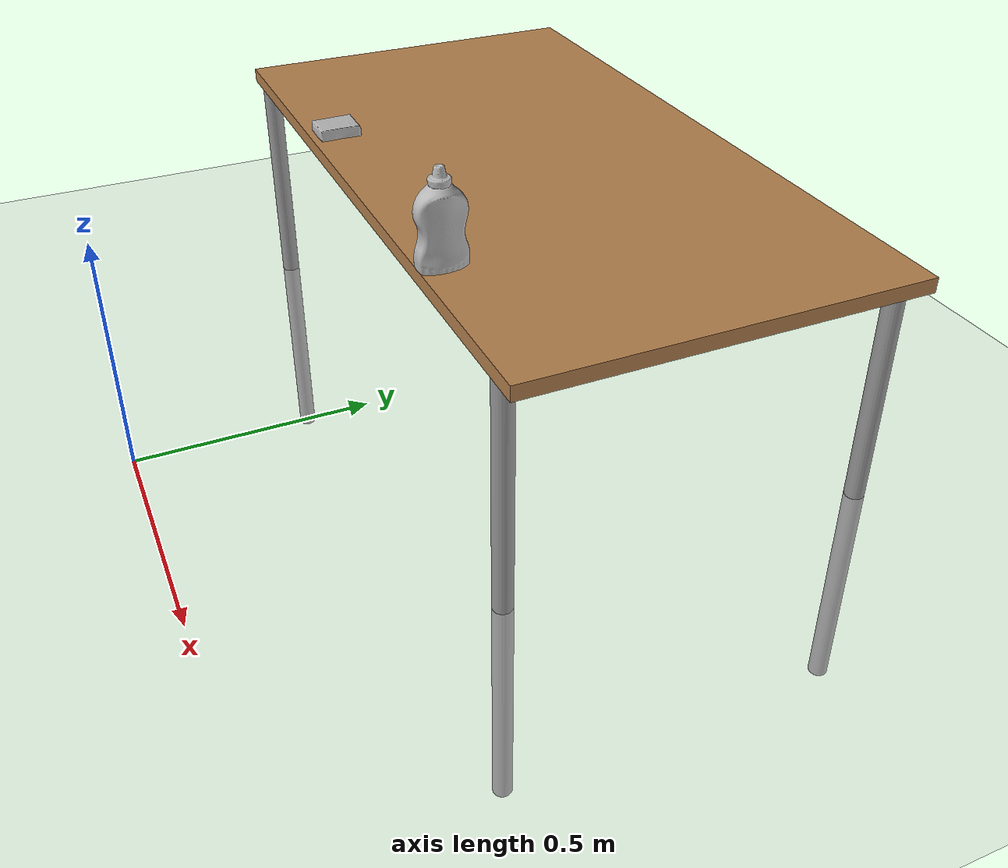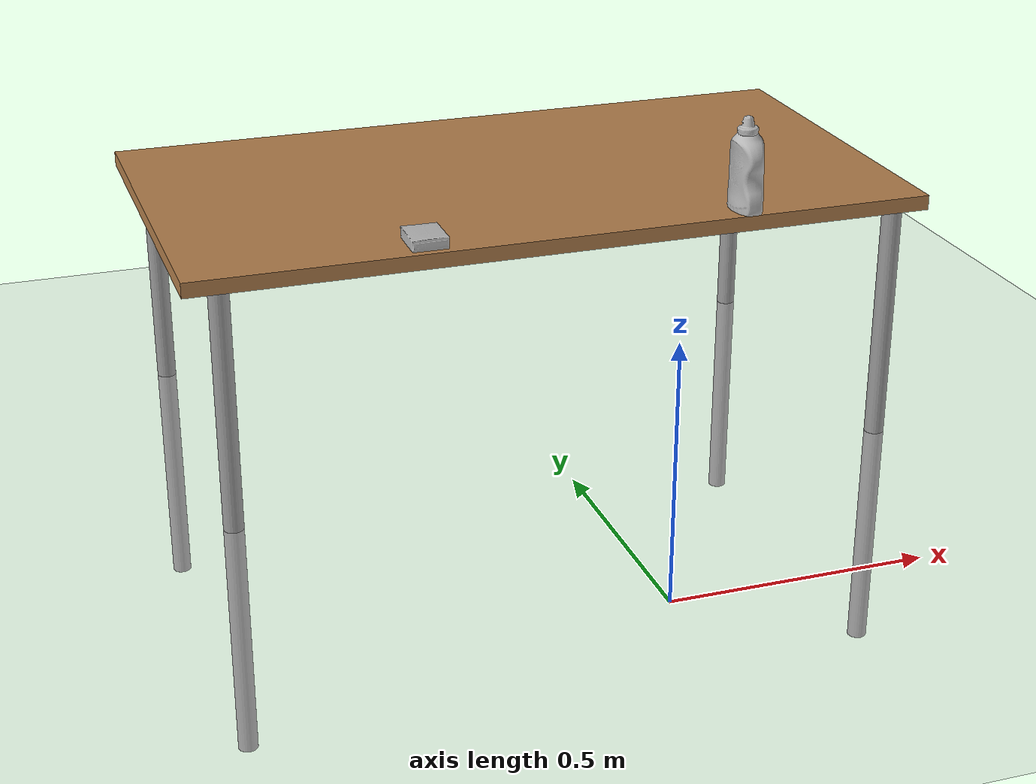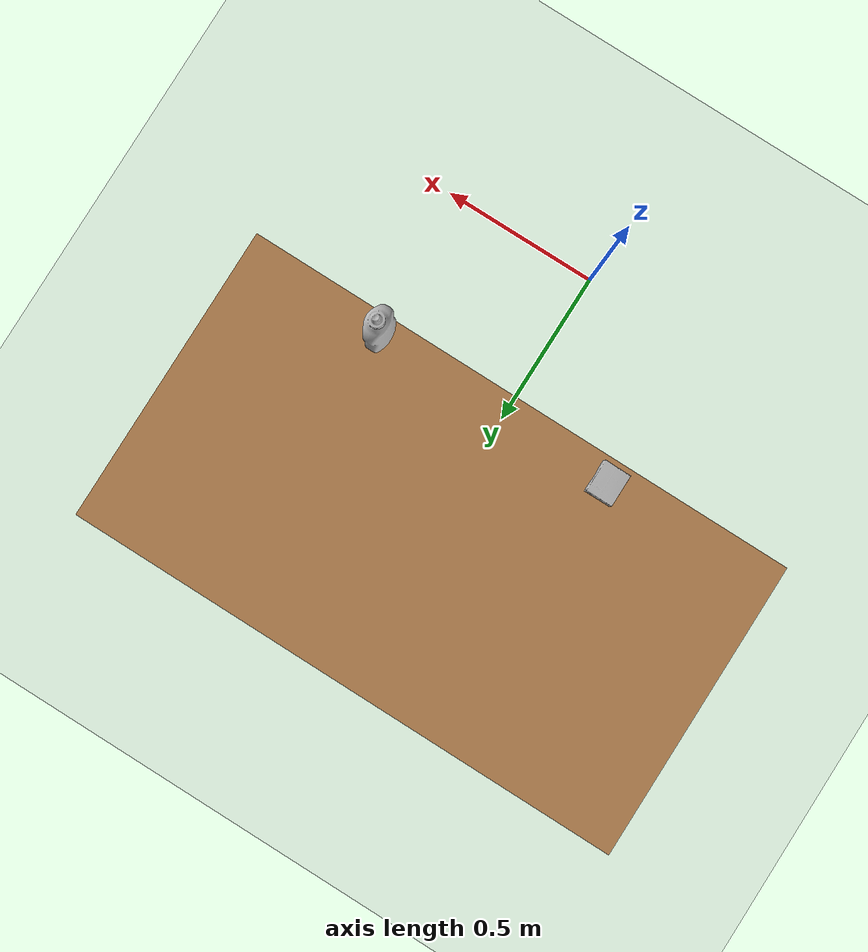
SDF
<sdf version="1.4">
 <world name="default">
  <include><uri>model://ground_plane</uri></include>
  <include><uri>model://sun</uri></include>
  <light name="user_point_light_0" type="point">
   <pose>0 0 1.25 0 0 0</pose>
   <diffuse>0.5 0.5 0.5 1</diffuse>
   <specular>0.1 0.1 0.1 1</specular>
   <attenuation>
    <range>20</range>
    <constant>0.5</constant>
    <linear>0.01</linear>
    <quadratic>0.001</quadratic>
   </attenuation>
   <cast_shadows>0</cast_shadows>
   <direction>0 0 -1</direction>
  </light>
  <include><uri>model://table</uri><pose>0 0.9 -0.5 0 0 3.14</pose></include>
  <include>
   <name>ycb_009_gelatin_box</name>
   <uri>model://gelatin_box</uri>
   <pose>-0.28 0.56 0.51 0 0 3.14</pose>
  </include>
  <include>
   <name>ycb_006_mustard_bottle</name>
   <uri>model://mustard_bottle</uri>
   <pose>0.39 0.54 0.51 0 0 -3.13</pose>
  </include>
  <scene><shadows>0</shadows></scene>
  <plugin name="gazebo_ros_state" filename="libgazebo_ros_state.so">
   <ros>
    <namespace>/ros2_grasp</namespace>
    <argument>model_states:=model_states</argument>
    <argument>link_states:=link_states</argument>
   </ros>
   <update_rate>1.0</update_rate>
  </plugin>
  <plugin name="gazebo_ros_properties" filename="libgazebo_ros_properties.so">
   <ros><namespace>/ros2_grasp</namespace></ros>
  </plugin>
 </world>
</sdf>

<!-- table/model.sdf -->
<sdf version="1.5">
  <model name="table">
    <static>true</static>
    <link name="link">
      <collision name="surface">
        <pose>0 0 1.0 0 0 0</pose>
        <geometry>
          <box>
            <size>1.5 0.8 0.03</size>
          </box>
        </geometry>
        <surface>
          <friction>
            <ode>
              <mu>0.6</mu>
              <mu2>0.6</mu2>
            </ode>
          </friction>
        </surface>
      </collision>
      <visual name="visual1">
        <pose>0 0 1.0 0 0 0</pose>
        <geometry>
          <box>
            <size>1.5 0.8 0.03</size>
          </box>
        </geometry>
        <material>
          <script>
            <uri>model://media/materials/scripts/gazebo.material</uri>
            <name>Gazebo/Wood</name>
          </script>
        </material>
      </visual>
      <collision name="front_left_leg">
        <pose>0.68 0.38 0.5 0 0 0</pose>
        <geometry>
          <cylinder>
            <radius>0.02</radius>
            <length>1.0</length>
          </cylinder>
        </geometry>
      </collision>
      <visual name="front_left_leg">
        <pose>0.68 0.38 0.5 0 0 0</pose>
        <geometry>
          <cylinder>
            <radius>0.02</radius>
            <length>1.0</length>
          </cylinder>
        </geometry>
        <material>
          <script>
            <uri>model://media/materials/scripts/gazebo.material</uri>
            <name>Gazebo/Grey</name>
          </script>
        </material>
      </visual>
      <collision name="front_right_leg">
        <pose>0.68 -0.38 0.5 0 0 0</pose>
        <geometry>
          <cylinder>
            <radius>0.02</radius>
            <length>1.0</length>
          </cylinder>
        </geometry>
      </collision>
      <visual name="front_right_leg">
        <pose>0.68 -0.38 0.5 0 0 0</pose>
        <geometry>
          <cylinder>
            <radius>0.02</radius>
            <length>1.0</length>
          </cylinder>
        </geometry>
        <material>
          <script>
            <uri>model://media/materials/scripts/gazebo.material</uri>
            <name>Gazebo/Grey</name>
          </script>
        </material>
      </visual>
      <collision name="back_right_leg">
        <pose>-0.68 -0.38 0.5 0 0 0</pose>
        <geometry>
          <cylinder>
            <radius>0.02</radius>
            <length>1.0</length>
          </cylinder>
        </geometry>
      </collision>
      <visual name="back_right_leg">
        <pose>-0.68 -0.38 0.5 0 0 0</pose>
        <geometry>
          <cylinder>
            <radius>0.02</radius>
            <length>1.0</length>
          </cylinder>
        </geometry>
        <material>
          <script>
            <uri>model://media/materials/scripts/gazebo.material</uri>
            <name>Gazebo/Grey</name>
          </script>
        </material>
      </visual>
      <collision name="back_left_leg">
        <pose>-0.68 0.38 0.5 0 0 0</pose>
        <geometry>
          <cylinder>
            <radius>0.02</radius>
            <length>1.0</length>
          </cylinder>
        </geometry>
      </collision>
      <visual name="back_left_leg">
        <pose>-0.68 0.38 0.5 0 0 0</pose>
        <geometry>
          <cylinder>
            <radius>0.02</radius>
            <length>1.0</length>
          </cylinder>
        </geometry>
        <material>
          <script>
            <uri>model://media/materials/scripts/gazebo.material</uri>
            <name>Gazebo/Grey</name>
          </script>
        </material>
      </visual>
    </link>
  </model>
</sdf>

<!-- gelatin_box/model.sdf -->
<sdf version="1.6">
  <model name="gelatin_box">
    <link name="link">
      <inertial>
        <mass>0.097</mass>
        <inertia>
          <ixx>0.000064739</ixx>
          <ixy>0.0</ixy>
          <ixz>0.0</ixz>
          <iyy>0.000049413</iyy>
          <iyz>0.0</iyz>
          <izz>0.000101478</izz>
        </inertia>
        <pose>0 0 0.014 0 0 0</pose>
      </inertial>
      <collision name="collision">
        <pose>0 0 0.014 0 0 0</pose>
        <geometry>
          <box>
            <size>0.073 0.085 0.028</size>
          </box>
        </geometry>
      </collision>
      <visual name="visual">
        <!--
          DAE 的厚度轴是 X，而 collision 的厚度轴是 Z。先绕 Y
          轴旋转 90° 使三边对应，再对齐两者包围盒中心。
        -->
        <pose>-0.036801976 -0.001813649 0.012466166 0 1.570796327 0</pose>
        <geometry>
          <mesh>
            <uri>model://gelatin_box/meshes/textured.dae</uri>
          </mesh>
        </geometry>
      </visual>
    </link>
  </model>
</sdf>

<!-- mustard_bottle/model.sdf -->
<sdf version="1.6">
  <model name="mustard_bottle">
    <link name="link">
      <inertial>
        <mass>0.603</mass>
        <inertia>
          <!-- these formulas are for a box/cuboid, but an ellipsoid might be a better approximation -->
          <ixx>0.002267531</ixx>
          <ixy>0.0</ixy>
          <ixz>0.0</ixz>
          <iyy>0.001983066</iyy>
          <iyz>0.0</iyz>
          <izz>0.000622547</izz>
        </inertia>
        <pose>0 0 0.095 0 0 0</pose>
      </inertial>
      <collision name="collision">
        <pose>0 0 0.095 0 0 0</pose>
        <geometry>
          <box>
            <size>0.058 0.095 0.190</size>
          </box>
        </geometry>
        <pose>0.025 -0.005 0 0 0 -1.15</pose>
        <geometry>
          <mesh>
            <uri>model://mustard_bottle/meshes/nontextured.stl</uri>
          </mesh>
        </geometry>
      </collision>
      <visual name="visual">
        <pose>0.025 -0.005 0 0 0 -1.15</pose>
        <geometry>
          <mesh>
            <uri>model://mustard_bottle/meshes/textured.dae</uri>
          </mesh>
        </geometry>
      </visual>
    </link>
  </model>
</sdf>
